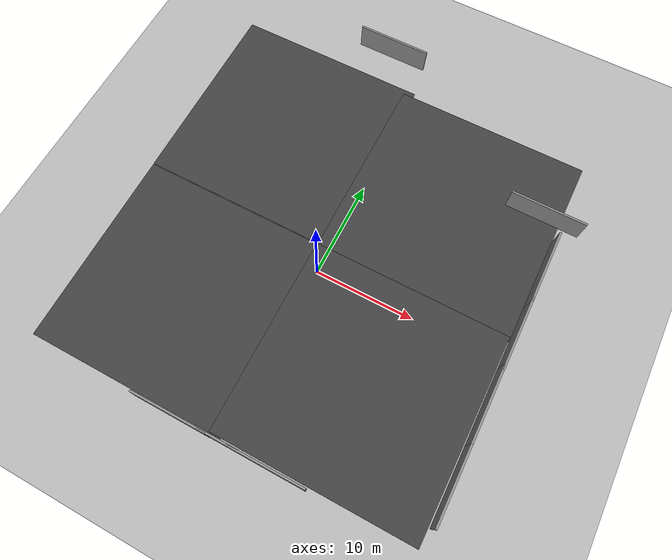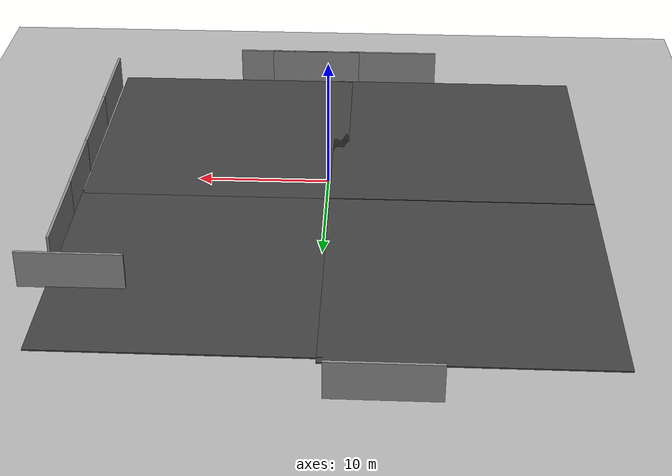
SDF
<?xml version="1.0"?>
<sdf version='1.6'>
  <world name='default'>
    <plugin filename="gz-sim-physics-system" name="gz::sim::systems::Physics" />
    <plugin filename="gz-sim-user-commands-system" name="gz::sim::systems::UserCommands" />
    <plugin filename="gz-sim-scene-broadcaster-system" name="gz::sim::systems::SceneBroadcaster" />
    <plugin filename="gz-sim-sensors-system" name="gz::sim::systems::Sensors">
      <render_engine>ogre2</render_engine>
    </plugin>
    <plugin filename="gz-sim-imu-system" name="gz::sim::systems::Imu" />
    <plugin filename="gz-sim-navsat-system" name="gz::sim::systems::NavSat" />

    <!-- Here is where we place objects inside our world -->
    <model name='ground_plane'>
      <static>1</static>
      <link name='link'>
        <collision name='collision'>
          <geometry>
            <plane>
              <normal>0 0 1</normal>
              <size>100 100</size>
            </plane>
          </geometry>
          <surface>
            <friction>
              <ode>
                <mu>100</mu>
                <mu2>50</mu2>
              </ode>
              <torsional>
                <ode />
              </torsional>
            </friction>
            <contact>
              <ode />
            </contact>
            <bounce />
          </surface>
          <max_contacts>10</max_contacts>
        </collision>
        <visual name='visual'>
          <cast_shadows>0</cast_shadows>
          <geometry>
            <plane>
              <normal>0 0 1</normal>
              <size>100 100</size>
            </plane>
          </geometry>
          <material>
            <ambient>0.7 0.7 0.7 1</ambient>
            <diffuse>0.7 0.7 0.7 1</diffuse>
          </material>
        </visual>
        <self_collide>0</self_collide>
        <enable_wind>0</enable_wind>
        <kinematic>0</kinematic>
      </link>
    </model>
    <model name='asphalt_plane'>
      <static>1</static>
      <link name='link'>
        <collision name='collision'>
          <geometry>
            <box>
              <size>20 20 0.1</size>
            </box>
          </geometry>
          <max_contacts>10</max_contacts>
          <surface>
            <contact>
              <ode />
            </contact>
            <bounce />
            <friction>
              <ode>
                <mu>100</mu>
                <mu2>50</mu2>
              </ode>
              <torsional>
                <ode />
              </torsional>
              <ode />
            </friction>
          </surface>
        </collision>
        <visual name='visual'>
          <cast_shadows>0</cast_shadows>
          <geometry>
            <box>
              <size>20 20 0.1</size>
            </box>
          </geometry>
          <material>
            <ambient>0.2 0.2 0.2 1</ambient>
            <diffuse>0.25 0.25 0.25 1</diffuse>
          </material>
        </visual>
        <self_collide>0</self_collide>
        <enable_wind>0</enable_wind>
        <kinematic>0</kinematic>
      </link>
      <pose frame=''>-10.1692 -7.43707 0 0 -0 0</pose>
    </model>
    <model name='asphalt_plane_clone'>
      <static>1</static>
      <link name='link'>
        <collision name='collision'>
          <geometry>
            <box>
              <size>20 20 0.1</size>
            </box>
          </geometry>
          <max_contacts>10</max_contacts>
          <surface>
            <contact>
              <ode />
            </contact>
            <bounce />
            <friction>
              <ode>
                <mu>100</mu>
                <mu2>50</mu2>
              </ode>
              <torsional>
                <ode />
              </torsional>
              <ode />
            </friction>
          </surface>
        </collision>
        <visual name='visual'>
          <cast_shadows>0</cast_shadows>
          <geometry>
            <box>
              <size>20 20 0.1</size>
            </box>
          </geometry>
          <material>
            <ambient>0.2 0.2 0.2 1</ambient>
            <diffuse>0.25 0.25 0.25 1</diffuse>
          </material>
        </visual>
        <self_collide>0</self_collide>
        <enable_wind>0</enable_wind>
        <kinematic>0</kinematic>
      </link>
      <pose frame=''>-10.1864 12.6443 0 0 -0 0</pose>
    </model>
    <model name='asphalt_plane_clone_clone'>
      <static>1</static>
      <link name='link'>
        <collision name='collision'>
          <geometry>
            <box>
              <size>20 20 0.1</size>
            </box>
          </geometry>
          <max_contacts>10</max_contacts>
          <surface>
            <contact>
              <ode />
            </contact>
            <bounce />
            <friction>
              <ode>
                <mu>100</mu>
                <mu2>50</mu2>
              </ode>
              <torsional>
                <ode />
              </torsional>
              <ode />
            </friction>
          </surface>
        </collision>
        <visual name='visual'>
          <cast_shadows>0</cast_shadows>
          <geometry>
            <box>
              <size>20 20 0.1</size>
            </box>
          </geometry>
          <material>
            <ambient>0.2 0.2 0.2 1</ambient>
            <diffuse>0.25 0.25 0.25 1</diffuse>
          </material>
        </visual>
        <self_collide>0</self_collide>
        <enable_wind>0</enable_wind>
        <kinematic>0</kinematic>
      </link>
      <pose frame=''>8.71597 12.1785 0 0 -0 0</pose>
    </model>
    <model name='asphalt_plane_clone_clone_0'>
      <static>1</static>
      <link name='link'>
        <collision name='collision'>
          <geometry>
            <box>
              <size>20 20 0.1</size>
            </box>
          </geometry>
          <max_contacts>10</max_contacts>
          <surface>
            <contact>
              <ode />
            </contact>
            <bounce />
            <friction>
              <ode>
                <mu>100</mu>
                <mu2>50</mu2>
              </ode>
              <torsional>
                <ode />
              </torsional>
              <ode />
            </friction>
          </surface>
        </collision>
        <visual name='visual'>
          <cast_shadows>0</cast_shadows>
          <geometry>
            <box>
              <size>20 20 0.1</size>
            </box>
          </geometry>
          <material>
            <ambient>0.2 0.2 0.2 1</ambient>
            <diffuse>0.25 0.25 0.25 1</diffuse>
          </material>
        </visual>
        <self_collide>0</self_collide>
        <enable_wind>0</enable_wind>
        <kinematic>0</kinematic>
      </link>
      <pose frame=''>8.60996 -7.34898 0 0 -0 0</pose>
    </model>
    <model name='grey_wall'>
      <static>1</static>
      <link name='link'>
        <pose frame=''>0 0 1.4 0 -0 0</pose>
        <collision name='collision'>
          <geometry>
            <box>
              <size>7.5 0.2 2.8</size>
            </box>
          </geometry>
          <max_contacts>10</max_contacts>
          <surface>
            <contact>
              <ode />
            </contact>
            <bounce />
            <friction>
              <torsional>
                <ode />
              </torsional>
              <ode />
            </friction>
          </surface>
        </collision>
        <visual name='visual'>
          <cast_shadows>0</cast_shadows>
          <geometry>
            <box>
              <size>7.5 0.2 2.8</size>
            </box>
          </geometry>
          <material>
            <ambient>0.5 0.5 0.5 1</ambient>
            <diffuse>0.55 0.55 0.55 1</diffuse>
          </material>
        </visual>
        <self_collide>0</self_collide>
        <enable_wind>0</enable_wind>
        <kinematic>0</kinematic>
      </link>
      <pose frame=''>-4.8114 -17.6626 0 0 -0 0</pose>
    </model>
    <model name='grey_wall_clone'>
      <static>1</static>
      <link name='link'>
        <pose frame=''>0 0 1.4 0 -0 0</pose>
        <collision name='collision'>
          <geometry>
            <box>
              <size>7.5 0.2 2.8</size>
            </box>
          </geometry>
          <max_contacts>10</max_contacts>
          <surface>
            <contact>
              <ode />
            </contact>
            <bounce />
            <friction>
              <torsional>
                <ode />
              </torsional>
              <ode />
            </friction>
          </surface>
        </collision>
        <visual name='visual'>
          <cast_shadows>0</cast_shadows>
          <geometry>
            <box>
              <size>7.5 0.2 2.8</size>
            </box>
          </geometry>
          <material>
            <ambient>0.5 0.5 0.5 1</ambient>
            <diffuse>0.55 0.55 0.55 1</diffuse>
          </material>
        </visual>
        <self_collide>0</self_collide>
        <enable_wind>0</enable_wind>
        <kinematic>0</kinematic>
      </link>
      <pose frame=''>1.84642 -17.6367 0 0 -0 0</pose>
    </model>
    <model name='grey_wall_clone_0'>
      <static>1</static>
      <link name='link'>
        <pose frame=''>0 0 1.4 0 -0 0</pose>
        <collision name='collision'>
          <geometry>
            <box>
              <size>7.5 0.2 2.8</size>
            </box>
          </geometry>
          <max_contacts>10</max_contacts>
          <surface>
            <contact>
              <ode />
            </contact>
            <bounce />
            <friction>
              <torsional>
                <ode />
              </torsional>
              <ode />
            </friction>
          </surface>
        </collision>
        <visual name='visual'>
          <cast_shadows>0</cast_shadows>
          <geometry>
            <box>
              <size>7.5 0.2 2.8</size>
            </box>
          </geometry>
          <material>
            <ambient>0.5 0.5 0.5 1</ambient>
            <diffuse>0.55 0.55 0.55 1</diffuse>
          </material>
        </visual>
        <self_collide>0</self_collide>
        <enable_wind>0</enable_wind>
        <kinematic>0</kinematic>
      </link>
      <pose frame=''>4.62088 -17.6372 0 0 -0 0</pose>
    </model>
    <model name='grey_wall_clone_clone'>
      <static>1</static>
      <link name='link'>
        <pose frame=''>0 0 1.4 0 -0 0</pose>
        <collision name='collision'>
          <geometry>
            <box>
              <size>7.5 0.2 2.8</size>
            </box>
          </geometry>
          <max_contacts>10</max_contacts>
          <surface>
            <contact>
              <ode />
            </contact>
            <bounce />
            <friction>
              <torsional>
                <ode />
              </torsional>
              <ode />
            </friction>
          </surface>
        </collision>
        <visual name='visual'>
          <cast_shadows>0</cast_shadows>
          <geometry>
            <box>
              <size>7.5 0.2 2.8</size>
            </box>
          </geometry>
          <material>
            <ambient>0.5 0.5 0.5 1</ambient>
            <diffuse>0.55 0.55 0.55 1</diffuse>
          </material>
        </visual>
        <self_collide>0</self_collide>
        <enable_wind>0</enable_wind>
        <kinematic>0</kinematic>
      </link>
      <pose frame=''>-4.48764 26.0166 0 0 -0 0</pose>
    </model>
    <model name='grey_wall_clone_clone_clone'>
      <static>1</static>
      <link name='link'>
        <pose frame=''>0 0 1.4 0 -0 0</pose>
        <collision name='collision'>
          <geometry>
            <box>
              <size>7.5 0.2 2.8</size>
            </box>
          </geometry>
          <max_contacts>10</max_contacts>
          <surface>
            <contact>
              <ode />
            </contact>
            <bounce />
            <friction>
              <torsional>
                <ode />
              </torsional>
              <ode />
            </friction>
          </surface>
        </collision>
        <visual name='visual'>
          <cast_shadows>0</cast_shadows>
          <geometry>
            <box>
              <size>7.5 0.2 2.8</size>
            </box>
          </geometry>
          <material>
            <ambient>0.5 0.5 0.5 1</ambient>
            <diffuse>0.55 0.55 0.55 1</diffuse>
          </material>
        </visual>
        <self_collide>0</self_collide>
        <enable_wind>0</enable_wind>
        <kinematic>0</kinematic>
      </link>
      <pose frame=''>16.935 15.0582 0 0 -0 0</pose>
    </model>
    <model name='grey_wall_clone_clone_clone_clone'>
      <static>1</static>
      <link name='link'>
        <pose frame=''>0 0 1.4 0 -0 0</pose>
        <collision name='collision'>
          <geometry>
            <box>
              <size>7.5 0.2 2.8</size>
            </box>
          </geometry>
          <max_contacts>10</max_contacts>
          <surface>
            <contact>
              <ode />
            </contact>
            <bounce />
            <friction>
              <torsional>
                <ode />
              </torsional>
              <ode />
            </friction>
          </surface>
        </collision>
        <visual name='visual'>
          <cast_shadows>0</cast_shadows>
          <geometry>
            <box>
              <size>7.5 0.2 2.8</size>
            </box>
          </geometry>
          <material>
            <ambient>0.5 0.5 0.5 1</ambient>
            <diffuse>0.55 0.55 0.55 1</diffuse>
          </material>
        </visual>
        <self_collide>0</self_collide>
        <enable_wind>0</enable_wind>
        <kinematic>0</kinematic>
      </link>
      <pose frame=''>18.767 9.41754 0 0 0 -1.56734</pose>
    </model>
    <model name='grey_wall_clone_clone_clone_clone_0'>
      <static>1</static>
      <link name='link'>
        <pose frame=''>0 0 1.4 0 -0 0</pose>
        <collision name='collision'>
          <geometry>
            <box>
              <size>7.5 0.2 2.8</size>
            </box>
          </geometry>
          <max_contacts>10</max_contacts>
          <surface>
            <contact>
              <ode />
            </contact>
            <bounce />
            <friction>
              <torsional>
                <ode />
              </torsional>
              <ode />
            </friction>
          </surface>
        </collision>
        <visual name='visual'>
          <cast_shadows>0</cast_shadows>
          <geometry>
            <box>
              <size>7.5 0.2 2.8</size>
            </box>
          </geometry>
          <material>
            <ambient>0.5 0.5 0.5 1</ambient>
            <diffuse>0.55 0.55 0.55 1</diffuse>
          </material>
        </visual>
        <self_collide>0</self_collide>
        <enable_wind>0</enable_wind>
        <kinematic>0</kinematic>
      </link>
      <pose frame=''>18.7963 2.45369 0 0 0 -1.56734</pose>
    </model>
    <model name='grey_wall_clone_clone_clone_clone_1'>
      <static>1</static>
      <link name='link'>
        <pose frame=''>0 0 1.4 0 -0 0</pose>
        <collision name='collision'>
          <geometry>
            <box>
              <size>7.5 0.2 2.8</size>
            </box>
          </geometry>
          <max_contacts>10</max_contacts>
          <surface>
            <contact>
              <ode />
            </contact>
            <bounce />
            <friction>
              <torsional>
                <ode />
              </torsional>
              <ode />
            </friction>
          </surface>
        </collision>
        <visual name='visual'>
          <cast_shadows>0</cast_shadows>
          <geometry>
            <box>
              <size>7.5 0.2 2.8</size>
            </box>
          </geometry>
          <material>
            <ambient>0.5 0.5 0.5 1</ambient>
            <diffuse>0.55 0.55 0.55 1</diffuse>
          </material>
        </visual>
        <self_collide>0</self_collide>
        <enable_wind>0</enable_wind>
        <kinematic>0</kinematic>
      </link>
      <pose frame=''>18.8058 -4.41342 0 0 0 -1.56734</pose>
    </model>
    <model name='grey_wall_clone_clone_clone_clone_2'>
      <static>1</static>
      <link name='link'>
        <pose frame=''>0 0 1.4 0 -0 0</pose>
        <collision name='collision'>
          <geometry>
            <box>
              <size>7.5 0.2 2.8</size>
            </box>
          </geometry>
          <max_contacts>10</max_contacts>
          <surface>
            <contact>
              <ode />
            </contact>
            <bounce />
            <friction>
              <torsional>
                <ode />
              </torsional>
              <ode />
            </friction>
          </surface>
        </collision>
        <visual name='visual'>
          <cast_shadows>0</cast_shadows>
          <geometry>
            <box>
              <size>7.5 0.2 2.8</size>
            </box>
          </geometry>
          <material>
            <ambient>0.5 0.5 0.5 1</ambient>
            <diffuse>0.55 0.55 0.55 1</diffuse>
          </material>
        </visual>
        <self_collide>0</self_collide>
        <enable_wind>0</enable_wind>
        <kinematic>0</kinematic>
      </link>
      <pose frame=''>18.8343 -11.7301 0 0 0 -1.56734</pose>
    </model>

    <light name='sun' type='directional'>
      <cast_shadows>1</cast_shadows>
      <pose frame=''>0 0 10 0 -0 0</pose>
      <diffuse>0.8 0.8 0.8 1</diffuse>
      <specular>0.2 0.2 0.2 1</specular>
      <attenuation>
        <range>1000</range>
        <constant>0.9</constant>
        <linear>0.01</linear>
        <quadratic>0.001</quadratic>
      </attenuation>
      <direction>-0.5 0.1 -0.9</direction>
    </light>

    <!-- Define the physics of the world -->
    <gravity>0 0 -9.8</gravity>
    <magnetic_field>6e-06 2.3e-05 -4.2e-05</magnetic_field>
    <atmosphere type='adiabatic' />
    <physics name='default_physics' default='0' type='ode'>
      <max_step_size>0.001</max_step_size>
      <real_time_factor>1</real_time_factor>
      <real_time_update_rate>1000</real_time_update_rate>
    </physics>
    <scene>
      <ambient>0.4 0.4 0.4 1</ambient>
      <background>0.7 0.7 0.7 1</background>
      <shadows>1</shadows>
    </scene>
    <audio>
      <device>default</device>
    </audio>
    <wind />

    <!-- Define the latitude, longitude, and elevation -->
    <spherical_coordinates>
      <surface_model>EARTH_WGS84</surface_model>
      <latitude_deg>45.420298</latitude_deg>
      <longitude_deg>-75.680707</longitude_deg>
      <elevation>70.7136</elevation>
      <heading_deg>0</heading_deg>
    </spherical_coordinates>

    <!-- Define the user perspective of the world -->
    <gui fullscreen='0'>
      <camera name='user_camera'>
        <pose frame=''>35.0 3.5 43.0 0.0 0.85 -3.1295</pose>
        <view_controller>orbit</view_controller>
        <projection_type>perspective</projection_type>
      </camera>
    </gui>

  </world>
</sdf>
